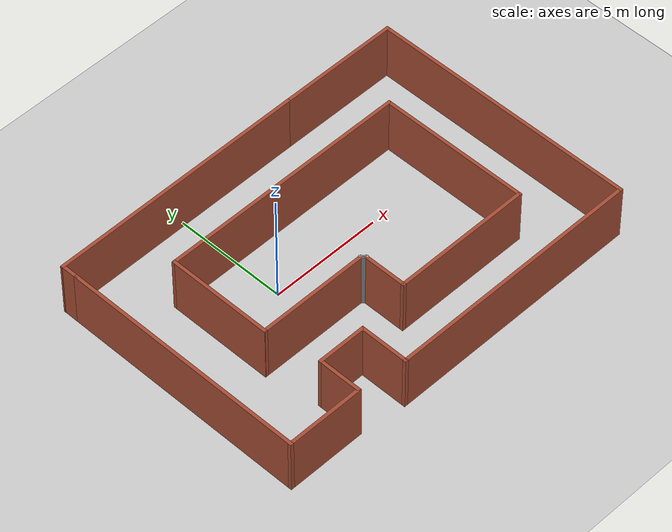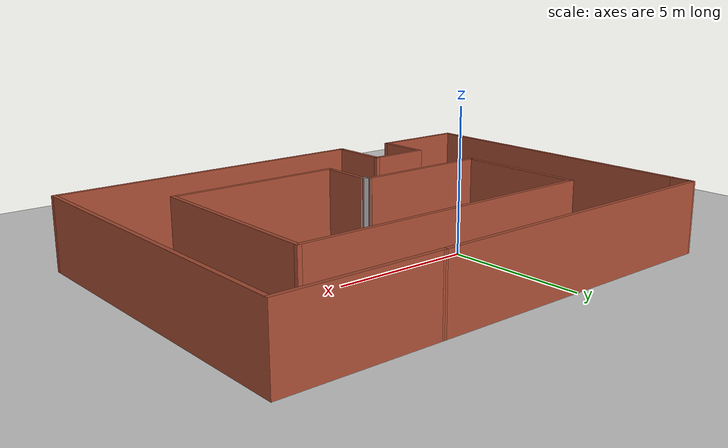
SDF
<sdf version="1.6">
 <world name="default">
  <light name="sun" type="directional">
   <pose>0 0 10 0 -0 0</pose>
   <diffuse>0.8 0.8 0.8 1</diffuse>
   <specular>0.2 0.2 0.2 1</specular>
   <attenuation>
    <range>1000</range>
    <constant>0.9</constant>
    <linear>0.01</linear>
    <quadratic>0.001</quadratic>
   </attenuation>
   <direction>-0.5 0.1 -0.9</direction>
  </light>
  <model name="ground_plane">
   <static>1</static>
   <link name="link">
    <collision name="collision">
     <geometry><plane><normal>0 0 1</normal><size>100 100</size></plane></geometry>
     <surface>
      <contact><collide_bitmask>65535</collide_bitmask></contact>
      <friction><ode><mu>100</mu><mu2>50</mu2></ode></friction>
     </surface>
    </collision>
    <visual name="visual">
     <cast_shadows>0</cast_shadows>
     <geometry><plane><normal>0 0 1</normal><size>100 100</size></plane></geometry>
     <material>
      <script><uri>file://media/materials/scripts/gazebo.material</uri><name>Gazebo/Grey</name></script>
     </material>
    </visual>
   </link>
  </model>
  <gravity>0 0 -9.8</gravity>
  <magnetic_field>6e-06 2.3e-05 -4.2e-05</magnetic_field>
  <atmosphere type="adiabatic"/>
  <physics name="default_physics" default="0" type="ode">
   <max_step_size>0.001</max_step_size>
   <real_time_factor>1</real_time_factor>
   <real_time_update_rate>1000</real_time_update_rate>
  </physics>
  <scene><ambient>0.4 0.4 0.4 1</ambient><background>0.7 0.7 0.7 1</background><shadows>1</shadows></scene>
  <audio><device>default</device></audio>
  <spherical_coordinates>
   <surface_model>EARTH_WGS84</surface_model>
   <latitude_deg>0</latitude_deg>
   <longitude_deg>0</longitude_deg>
   <elevation>0</elevation>
   <heading_deg>0</heading_deg>
  </spherical_coordinates>
  <model name="corridor">
   <pose>2.48635 -0.94512 0 0 -0 0</pose>
   <link name="Wall_0">
    <collision name="Wall_0_Collision">
     <geometry><box><size>5.5 0.15 2.5</size></box></geometry>
     <pose>0 0 1.25 0 -0 0</pose>
    </collision>
    <visual name="Wall_0_Visual">
     <pose>0 0 1.25 0 -0 0</pose>
     <geometry><box><size>5.5 0.15 2.5</size></box></geometry>
     <material>
      <script><uri>file://media/materials/scripts/gazebo.material</uri><name>Gazebo/Bricks</name></script>
      <ambient>1 1 1 1</ambient>
     </material>
     <meta><layer>0</layer></meta>
    </visual>
    <pose>5.72516 5.92484 0 0 -0 0</pose>
   </link>
   <link name="Wall_1">
    <collision name="Wall_1_Collision">
     <geometry><box><size>12 0.15 2.5</size></box></geometry>
     <pose>0 0 1.25 0 -0 0</pose>
    </collision>
    <visual name="Wall_1_Visual">
     <pose>0 0 1.25 0 -0 0</pose>
     <geometry><box><size>12 0.15 2.5</size></box></geometry>
     <material>
      <script><uri>file://media/materials/scripts/gazebo.material</uri><name>Gazebo/Bricks</name></script>
      <ambient>1 1 1 1</ambient>
     </material>
     <meta><layer>0</layer></meta>
    </visual>
    <pose>8.40016 -0.000163 0 0 -0 -1.5708</pose>
   </link>
   <link name="Wall_10">
    <collision name="Wall_10_Collision">
     <geometry><box><size>11.6001 0.15 2.5</size></box></geometry>
     <pose>0 0 1.25 0 -0 0</pose>
    </collision>
    <visual name="Wall_10_Visual">
     <pose>0 0 1.25 0 -0 0</pose>
     <geometry><box><size>11.6001 0.15 2.5</size></box></geometry>
     <material>
      <script><uri>file://media/materials/scripts/gazebo.material</uri><name>Gazebo/Bricks</name></script>
      <ambient>1 1 1 1</ambient>
     </material>
     <meta><layer>0</layer></meta>
    </visual>
    <pose>-2.67484 5.89984 0 0 -0 0.004367</pose>
   </link>
   <link name="Wall_14">
    <collision name="Wall_14_Collision">
     <geometry><box><size>6.25 0.15 2.5</size></box></geometry>
     <pose>0 0 1.25 0 -0 0</pose>
    </collision>
    <visual name="Wall_14_Visual">
     <pose>0 0 1.25 0 -0 0</pose>
     <geometry><box><size>6.25 0.15 2.5</size></box></geometry>
     <material>
      <script><uri>file://media/materials/scripts/gazebo.material</uri><name>Gazebo/Bricks</name></script>
      <ambient>1 1 1 1</ambient>
     </material>
     <meta><layer>0</layer></meta>
    </visual>
    <pose>2.5921 -3.43122 0 0 -0 3.14159</pose>
   </link>
   <link name="Wall_15">
    <collision name="Wall_15_Collision">
     <geometry><box><size>2 0.15 2.5</size></box></geometry>
     <pose>0 0 1.25 0 -0 0</pose>
    </collision>
    <visual name="Wall_15_Visual">
     <pose>0 0 1.25 0 -0 0</pose>
     <geometry><box><size>2 0.15 2.5</size></box></geometry>
     <material>
      <script><uri>file://media/materials/scripts/gazebo.material</uri><name>Gazebo/Bricks</name></script>
      <ambient>1 1 1 1</ambient>
     </material>
     <meta><layer>0</layer></meta>
    </visual>
    <pose>-0.457896 -2.50622 0 0 -0 1.5708</pose>
   </link>
   <link name="Wall_2">
    <collision name="Wall_2_Collision">
     <geometry><box><size>11.5 0.15 2.5</size></box></geometry>
     <pose>0 0 1.25 0 -0 0</pose>
    </collision>
    <visual name="Wall_2_Visual">
     <pose>0 0 1.25 0 -0 0</pose>
     <geometry><box><size>11.5 0.15 2.5</size></box></geometry>
     <material>
      <script><uri>file://media/materials/scripts/gazebo.material</uri><name>Gazebo/Bricks</name></script>
      <ambient>1 1 1 1</ambient>
     </material>
     <meta><layer>0</layer></meta>
    </visual>
    <pose>2.72516 -5.92516 0 0 -0 3.14159</pose>
   </link>
   <link name="Wall_22">
    <collision name="Wall_22_Collision">
     <geometry><box><size>6.75 0.15 2.5</size></box></geometry>
     <pose>0 0 1.25 0 -0 0</pose>
    </collision>
    <visual name="Wall_22_Visual">
     <pose>0 0 1.25 0 -0 0</pose>
     <geometry><box><size>6.75 0.15 2.5</size></box></geometry>
     <material>
      <script><uri>file://media/materials/scripts/gazebo.material</uri><name>Gazebo/Bricks</name></script>
      <ambient>1 1 1 1</ambient>
     </material>
     <meta><layer>0</layer></meta>
    </visual>
    <pose>5.6421 -0.131222 0 0 -0 1.5708</pose>
   </link>
   <link name="Wall_23">
    <collision name="Wall_23_Collision">
     <geometry><box><size>11.25 0.15 2.5</size></box></geometry>
     <pose>0 0 1.25 0 -0 0</pose>
    </collision>
    <visual name="Wall_23_Visual">
     <pose>0 0 1.25 0 -0 0</pose>
     <geometry><box><size>11.25 0.15 2.5</size></box></geometry>
     <material>
      <script><uri>file://media/materials/scripts/gazebo.material</uri><name>Gazebo/Bricks</name></script>
      <ambient>1 1 1 1</ambient>
     </material>
     <meta><layer>0</layer></meta>
    </visual>
    <pose>0.092104 3.16878 0 0 -0 3.14159</pose>
   </link>
   <link name="Wall_24">
    <collision name="Wall_24_Collision">
     <geometry><box><size>4.75 0.15 2.5</size></box></geometry>
     <pose>0 0 1.25 0 -0 0</pose>
    </collision>
    <visual name="Wall_24_Visual">
     <pose>0 0 1.25 0 -0 0</pose>
     <geometry><box><size>4.75 0.15 2.5</size></box></geometry>
     <material>
      <script><uri>file://media/materials/scripts/gazebo.material</uri><name>Gazebo/Bricks</name></script>
      <ambient>1 1 1 1</ambient>
     </material>
     <meta><layer>0</layer></meta>
    </visual>
    <pose>-5.4579 0.868778 0 0 -0 -1.5708</pose>
   </link>
   <link name="Wall_25">
    <collision name="Wall_25_Collision">
     <geometry><box><size>5 0.15 2.5</size></box></geometry>
     <pose>0 0 1.25 0 -0 0</pose>
    </collision>
    <visual name="Wall_25_Visual">
     <pose>0 0 1.25 0 -0 0</pose>
     <geometry><box><size>5 0.15 2.5</size></box></geometry>
     <material>
      <script><uri>file://media/materials/scripts/gazebo.material</uri><name>Gazebo/Bricks</name></script>
      <ambient>1 1 1 1</ambient>
     </material>
     <meta><layer>0</layer></meta>
    </visual>
    <pose>-3.0329 -1.43122 0 0 -0 0</pose>
   </link>
   <link name="Wall_26">
    <collision name="Wall_26_Collision">
     <geometry><box><size>0.362132 0.15 2.5</size></box></geometry>
     <pose>0 0 1.25 0 -0 0</pose>
    </collision>
    <visual name="Wall_26_Visual">
     <pose>0 0 1.25 0 -0 0</pose>
     <geometry><box><size>0.362132 0.15 2.5</size></box></geometry>
     <material>
      <script><uri>file://media/materials/scripts/gazebo.material</uri><name>Gazebo/Grey</name></script>
      <ambient>1 1 1 1</ambient>
     </material>
     <meta><layer>0</layer></meta>
    </visual>
    <pose>-0.532896 -1.50622 0 0 -0 -0.785398</pose>
   </link>
   <link name="Wall_3">
    <collision name="Wall_3_Collision">
     <geometry><box><size>2.25 0.15 2.5</size></box></geometry>
     <pose>0 0 1.25 0 -0 0</pose>
    </collision>
    <visual name="Wall_3_Visual">
     <pose>0 0 1.25 0 -0 0</pose>
     <geometry><box><size>2.25 0.15 2.5</size></box></geometry>
     <material>
      <script><uri>file://media/materials/scripts/gazebo.material</uri><name>Gazebo/Bricks</name></script>
      <ambient>1 1 1 1</ambient>
     </material>
     <meta><layer>0</layer></meta>
    </visual>
    <pose>-2.94984 -4.87516 0 0 -0 1.5708</pose>
   </link>
   <link name="Wall_4">
    <collision name="Wall_4_Collision">
     <geometry><box><size>2.25 0.15 2.5</size></box></geometry>
     <pose>0 0 1.25 0 -0 0</pose>
    </collision>
    <visual name="Wall_4_Visual">
     <pose>0 0 1.25 0 -0 0</pose>
     <geometry><box><size>2.25 0.15 2.5</size></box></geometry>
     <material>
      <script><uri>file://media/materials/scripts/gazebo.material</uri><name>Gazebo/Bricks</name></script>
      <ambient>1 1 1 1</ambient>
     </material>
     <meta><layer>0</layer></meta>
    </visual>
    <pose>-3.99984 -3.82516 0 0 -0 3.14159</pose>
   </link>
   <link name="Wall_5">
    <collision name="Wall_5_Collision">
     <geometry><box><size>2 0.15 2.5</size></box></geometry>
     <pose>0 0 1.25 0 -0 0</pose>
    </collision>
    <visual name="Wall_5_Visual">
     <pose>0 0 1.25 0 -0 0</pose>
     <geometry><box><size>2 0.15 2.5</size></box></geometry>
     <material>
      <script><uri>file://media/materials/scripts/gazebo.material</uri><name>Gazebo/Bricks</name></script>
      <ambient>1 1 1 1</ambient>
     </material>
     <meta><layer>0</layer></meta>
    </visual>
    <pose>-5.04984 -4.75016 0 0 -0 -1.5708</pose>
   </link>
   <link name="Wall_6">
    <collision name="Wall_6_Collision">
     <geometry><box><size>3.5 0.15 2.5</size></box></geometry>
     <pose>0 0 1.25 0 -0 0</pose>
    </collision>
    <visual name="Wall_6_Visual">
     <pose>0 0 1.25 0 -0 0</pose>
     <geometry><box><size>3.5 0.15 2.5</size></box></geometry>
     <material>
      <script><uri>file://media/materials/scripts/gazebo.material</uri><name>Gazebo/Bricks</name></script>
      <ambient>1 1 1 1</ambient>
     </material>
     <meta><layer>0</layer></meta>
    </visual>
    <pose>-6.72484 -5.67516 0 0 -0 3.14159</pose>
   </link>
   <link name="Wall_7">
    <collision name="Wall_7_Collision">
     <geometry><box><size>11 0.15 2.5</size></box></geometry>
     <pose>0 0 1.25 0 -0 0</pose>
    </collision>
    <visual name="Wall_7_Visual">
     <pose>0 0 1.25 0 -0 0</pose>
     <geometry><box><size>11 0.15 2.5</size></box></geometry>
     <material>
      <script><uri>file://media/materials/scripts/gazebo.material</uri><name>Gazebo/Bricks</name></script>
      <ambient>1 1 1 1</ambient>
     </material>
     <meta><layer>0</layer></meta>
    </visual>
    <pose>-8.39984 -0.250163 0 0 -0 1.5708</pose>
   </link>
   <link name="Wall_8">
    <collision name="Wall_8_Collision">
     <geometry><box><size>0.75 0.15 2.5</size></box></geometry>
     <pose>0 0 1.25 0 -0 0</pose>
    </collision>
    <visual name="Wall_8_Visual">
     <pose>0 0 1.25 0 -0 0</pose>
     <geometry><box><size>0.75 0.15 2.5</size></box></geometry>
     <material>
      <script><uri>file://media/materials/scripts/gazebo.material</uri><name>Gazebo/Bricks</name></script>
      <ambient>1 1 1 1</ambient>
     </material>
     <meta><layer>0</layer></meta>
    </visual>
    <pose>-8.39984 5.47484 0 0 -0 1.5708</pose>
   </link>
   <link name="Wall_9">
    <collision name="Wall_9_Collision">
     <geometry><box><size>0.25 0.15 2.5</size></box></geometry>
     <pose>0 0 1.25 0 -0 0</pose>
    </collision>
    <visual name="Wall_9_Visual">
     <pose>0 0 1.25 0 -0 0</pose>
     <geometry><box><size>0.25 0.15 2.5</size></box></geometry>
     <material>
      <script><uri>file://media/materials/scripts/gazebo.material</uri><name>Gazebo/Bricks</name></script>
      <ambient>1 1 1 1</ambient>
     </material>
     <meta><layer>0</layer></meta>
    </visual>
    <pose>-8.39984 5.82484 0 0 -0 1.5708</pose>
   </link>
   <static>1</static>
  </model>
 </world>
</sdf>
